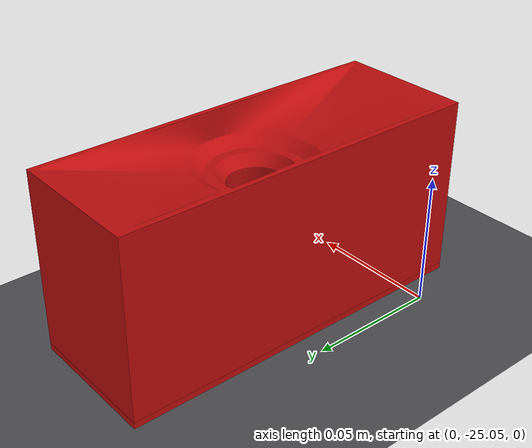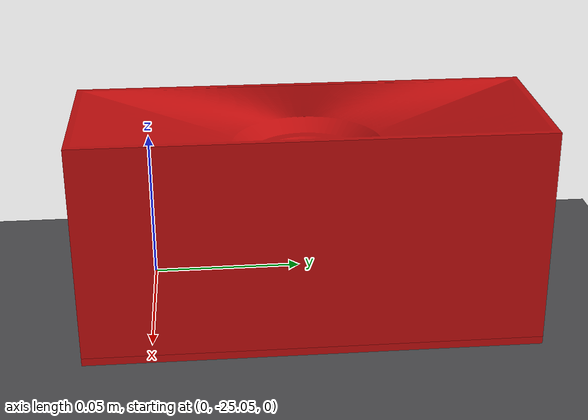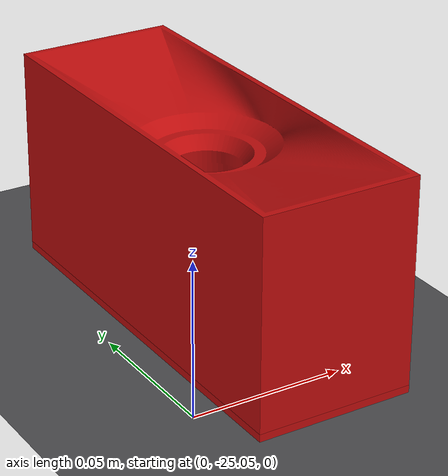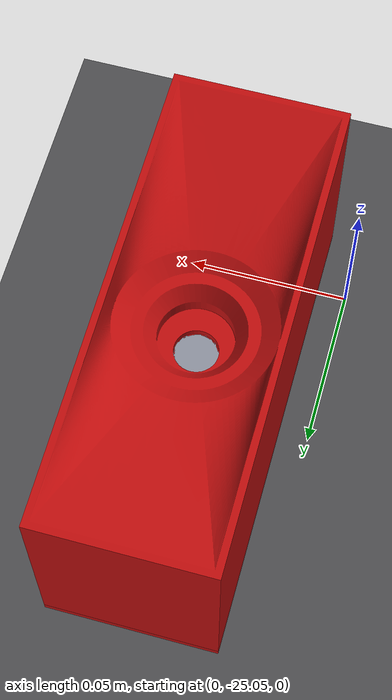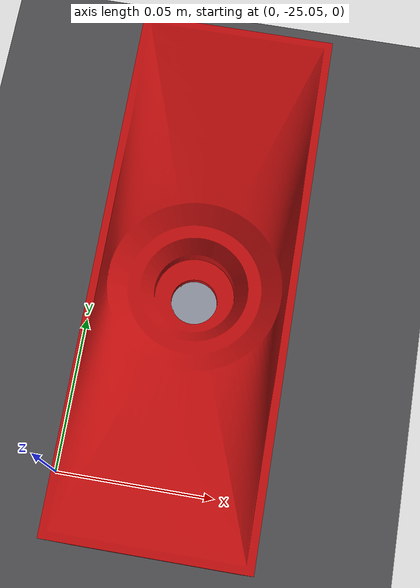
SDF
<sdf version="1.9">
 <world name="default">
  <model name="ground_plane">
   <static>true</static>
   <link name="link">
    <collision name="collision">
     <geometry><plane><normal>0 0 1</normal><size>1 1</size></plane></geometry>
    </collision>
    <visual name="visual">
     <cast_shadows>false</cast_shadows>
     <geometry><plane><normal>0 0 1</normal><size>500 500</size></plane></geometry>
     <material>
      <ambient>0.30 0.30 0.31 1</ambient>
      <diffuse>0.30 0.30 0.31 1</diffuse>
      <specular>0 0 0 0</specular>
      <pbr>
       <metal>
        <albedo_map>materials/textures/asphalt_grey.png</albedo_map>
        <metalness>0.0</metalness>
        <roughness>1.0</roughness>
       </metal>
      </pbr>
     </material>
    </visual>
    <inertial>
     <mass>1</mass>
     <inertia><ixx>1</ixx><ixy>0</ixy><ixz>0</ixz><iyy>1</iyy><iyz>0</iyz><izz>1</izz></inertia>
    </inertial>
   </link>
  </model>
  <model name="payload_red">
   <pose>0.035000 -25.000000 0.035 0 0 1.5707963268</pose>
   <link name="link">
    <inertial>
     <mass>0.15</mass>
     <inertia><ixx>9.25e-5</ixx><iyy>3.06e-4</iyy><izz>2.76e-4</izz><ixy>0</ixy><ixz>0</ixz><iyz>0</iyz></inertia>
    </inertial>
    <collision name="bore_base">
     <pose>0.000000 0.000000 -0.009000 0.000000000 0.000000000 0.000000000</pose>
     <geometry><box><size>0.140000 0.050000 0.052000</size></box></geometry>
    </collision>
    <collision name="bore_fill_wall_00">
     <pose>-0.047100 0.012500 0.029750 0.000000000 0.000000000 0.000000000</pose>
     <geometry><box><size>0.045800 0.025000 0.010500</size></box></geometry>
    </collision>
    <collision name="bore_fill_wall_01">
     <pose>-0.047100 -0.012500 0.029750 0.000000000 0.000000000 0.000000000</pose>
     <geometry><box><size>0.045800 0.025000 0.010500</size></box></geometry>
    </collision>
    <collision name="bore_fill_wall_02">
     <pose>-0.021175 0.020503 0.029750 0.000000000 0.000000000 0.000000000</pose>
     <geometry><box><size>0.006050 0.008993 0.010500</size></box></geometry>
    </collision>
    <collision name="bore_fill_wall_03">
     <pose>-0.021175 -0.020503 0.029750 0.000000000 0.000000000 0.000000000</pose>
     <geometry><box><size>0.006050 0.008993 0.010500</size></box></geometry>
    </collision>
    <collision name="bore_fill_wall_04">
     <pose>-0.015125 0.022979 0.029750 0.000000000 0.000000000 0.000000000</pose>
     <geometry><box><size>0.006050 0.004042 0.010500</size></box></geometry>
    </collision>
    <collision name="bore_fill_wall_05">
     <pose>-0.015125 -0.022979 0.029750 0.000000000 0.000000000 0.000000000</pose>
     <geometry><box><size>0.006050 0.004042 0.010500</size></box></geometry>
    </collision>
    <collision name="bore_fill_wall_06">
     <pose>-0.009075 0.024216 0.029750 0.000000000 0.000000000 0.000000000</pose>
     <geometry><box><size>0.006050 0.001568 0.010500</size></box></geometry>
    </collision>
    <collision name="bore_fill_wall_07">
     <pose>-0.009075 -0.024216 0.029750 0.000000000 0.000000000 0.000000000</pose>
     <geometry><box><size>0.006050 0.001568 0.010500</size></box></geometry>
    </collision>
    <collision name="bore_fill_wall_08">
     <pose>-0.003025 0.024600 0.029750 0.000000000 0.000000000 0.000000000</pose>
     <geometry><box><size>0.006050 0.000800 0.010500</size></box></geometry>
    </collision>
    <collision name="bore_fill_wall_09">
     <pose>-0.003025 -0.024600 0.029750 0.000000000 0.000000000 0.000000000</pose>
     <geometry><box><size>0.006050 0.000800 0.010500</size></box></geometry>
    </collision>
    <collision name="bore_fill_wall_10">
     <pose>0.003025 0.024600 0.029750 0.000000000 0.000000000 0.000000000</pose>
     <geometry><box><size>0.006050 0.000800 0.010500</size></box></geometry>
    </collision>
    <collision name="bore_fill_wall_11">
     <pose>0.003025 -0.024600 0.029750 0.000000000 0.000000000 0.000000000</pose>
     <geometry><box><size>0.006050 0.000800 0.010500</size></box></geometry>
    </collision>
    <collision name="bore_fill_wall_12">
     <pose>0.009075 0.024216 0.029750 0.000000000 0.000000000 0.000000000</pose>
     <geometry><box><size>0.006050 0.001568 0.010500</size></box></geometry>
    </collision>
    <collision name="bore_fill_wall_13">
     <pose>0.009075 -0.024216 0.029750 0.000000000 0.000000000 0.000000000</pose>
     <geometry><box><size>0.006050 0.001568 0.010500</size></box></geometry>
    </collision>
    <collision name="bore_fill_wall_14">
     <pose>0.015125 0.022979 0.029750 0.000000000 0.000000000 0.000000000</pose>
     <geometry><box><size>0.006050 0.004042 0.010500</size></box></geometry>
    </collision>
    <collision name="bore_fill_wall_15">
     <pose>0.015125 -0.022979 0.029750 0.000000000 0.000000000 0.000000000</pose>
     <geometry><box><size>0.006050 0.004042 0.010500</size></box></geometry>
    </collision>
    <collision name="bore_fill_wall_16">
     <pose>0.021175 0.020503 0.029750 0.000000000 0.000000000 0.000000000</pose>
     <geometry><box><size>0.006050 0.008993 0.010500</size></box></geometry>
    </collision>
    <collision name="bore_fill_wall_17">
     <pose>0.021175 -0.020503 0.029750 0.000000000 0.000000000 0.000000000</pose>
     <geometry><box><size>0.006050 0.008993 0.010500</size></box></geometry>
    </collision>
    <collision name="bore_fill_wall_18">
     <pose>0.047100 0.012500 0.029750 0.000000000 0.000000000 0.000000000</pose>
     <geometry><box><size>0.045800 0.025000 0.010500</size></box></geometry>
    </collision>
    <collision name="bore_fill_wall_19">
     <pose>0.047100 -0.012500 0.029750 0.000000000 0.000000000 0.000000000</pose>
     <geometry><box><size>0.045800 0.025000 0.010500</size></box></geometry>
    </collision>
    <collision name="bore_wall_00">
     <pose>0.026424 0.000000 0.029750 0.000000000 0.000000000 0.000000000</pose>
     <geometry><box><size>0.007153 0.014080 0.010500</size></box></geometry>
    </collision>
    <collision name="bore_wall_01">
     <pose>0.022883 0.013212 0.029750 0.000000000 0.000000000 0.523598776</pose>
     <geometry><box><size>0.007153 0.014080 0.010500</size></box></geometry>
    </collision>
    <collision name="bore_wall_02">
     <pose>0.011895 0.020602 0.029750 0.000000000 0.000000000 1.047197551</pose>
     <geometry><box><size>0.001884 0.014080 0.010500</size></box></geometry>
    </collision>
    <collision name="bore_wall_03">
     <pose>0.000000 0.023871 0.029750 0.000000000 0.000000000 1.570796327</pose>
     <geometry><box><size>0.002048 0.014080 0.010500</size></box></geometry>
    </collision>
    <collision name="bore_wall_04">
     <pose>-0.011895 0.020602 0.029750 0.000000000 0.000000000 2.094395102</pose>
     <geometry><box><size>0.001884 0.014080 0.010500</size></box></geometry>
    </collision>
    <collision name="bore_wall_05">
     <pose>-0.022883 0.013212 0.029750 0.000000000 0.000000000 2.617993878</pose>
     <geometry><box><size>0.007153 0.014080 0.010500</size></box></geometry>
    </collision>
    <collision name="bore_wall_06">
     <pose>-0.026424 0.000000 0.029750 0.000000000 0.000000000 3.141592654</pose>
     <geometry><box><size>0.007153 0.014080 0.010500</size></box></geometry>
    </collision>
    <collision name="bore_wall_07">
     <pose>-0.022883 -0.013212 0.029750 0.000000000 0.000000000 3.665191429</pose>
     <geometry><box><size>0.007153 0.014080 0.010500</size></box></geometry>
    </collision>
    <collision name="bore_wall_08">
     <pose>-0.011895 -0.020602 0.029750 0.000000000 0.000000000 4.188790205</pose>
     <geometry><box><size>0.001884 0.014080 0.010500</size></box></geometry>
    </collision>
    <collision name="bore_wall_09">
     <pose>-0.000000 -0.023871 0.029750 0.000000000 0.000000000 4.712388980</pose>
     <geometry><box><size>0.002048 0.014080 0.010500</size></box></geometry>
    </collision>
    <collision name="bore_wall_10">
     <pose>0.011895 -0.020602 0.029750 0.000000000 0.000000000 5.235987756</pose>
     <geometry><box><size>0.001884 0.014080 0.010500</size></box></geometry>
    </collision>
    <collision name="bore_wall_11">
     <pose>0.022883 -0.013212 0.029750 0.000000000 0.000000000 5.759586532</pose>
     <geometry><box><size>0.007153 0.014080 0.010500</size></box></geometry>
    </collision>
    <collision name="bore_fill_chamfer1_00">
     <pose>-0.046735 0.012500 0.022625 0.000000000 0.000000000 0.000000000</pose>
     <geometry><box><size>0.046530 0.025000 0.003750</size></box></geometry>
    </collision>
    <collision name="bore_fill_chamfer1_01">
     <pose>-0.046735 -0.012500 0.022625 0.000000000 0.000000000 0.000000000</pose>
     <geometry><box><size>0.046530 0.025000 0.003750</size></box></geometry>
    </collision>
    <collision name="bore_fill_chamfer1_02">
     <pose>-0.020536 0.020262 0.022625 0.000000000 0.000000000 0.000000000</pose>
     <geometry><box><size>0.005867 0.009476 0.003750</size></box></geometry>
    </collision>
    <collision name="bore_fill_chamfer1_03">
     <pose>-0.020536 -0.020262 0.022625 0.000000000 0.000000000 0.000000000</pose>
     <geometry><box><size>0.005867 0.009476 0.003750</size></box></geometry>
    </collision>
    <collision name="bore_fill_chamfer1_04">
     <pose>-0.014669 0.022663 0.022625 0.000000000 0.000000000 0.000000000</pose>
     <geometry><box><size>0.005867 0.004674 0.003750</size></box></geometry>
    </collision>
    <collision name="bore_fill_chamfer1_05">
     <pose>-0.014669 -0.022663 0.022625 0.000000000 0.000000000 0.000000000</pose>
     <geometry><box><size>0.005867 0.004674 0.003750</size></box></geometry>
    </collision>
    <collision name="bore_fill_chamfer1_06">
     <pose>-0.008801 0.023862 0.022625 0.000000000 0.000000000 0.000000000</pose>
     <geometry><box><size>0.005867 0.002275 0.003750</size></box></geometry>
    </collision>
    <collision name="bore_fill_chamfer1_07">
     <pose>-0.008801 -0.023862 0.022625 0.000000000 0.000000000 0.000000000</pose>
     <geometry><box><size>0.005867 0.002275 0.003750</size></box></geometry>
    </collision>
    <collision name="bore_fill_chamfer1_08">
     <pose>-0.002934 0.024235 0.022625 0.000000000 0.000000000 0.000000000</pose>
     <geometry><box><size>0.005867 0.001530 0.003750</size></box></geometry>
    </collision>
    <collision name="bore_fill_chamfer1_09">
     <pose>-0.002934 -0.024235 0.022625 0.000000000 0.000000000 0.000000000</pose>
     <geometry><box><size>0.005867 0.001530 0.003750</size></box></geometry>
    </collision>
    <collision name="bore_fill_chamfer1_10">
     <pose>0.002934 0.024235 0.022625 0.000000000 0.000000000 0.000000000</pose>
     <geometry><box><size>0.005867 0.001530 0.003750</size></box></geometry>
    </collision>
    <collision name="bore_fill_chamfer1_11">
     <pose>0.002934 -0.024235 0.022625 0.000000000 0.000000000 0.000000000</pose>
     <geometry><box><size>0.005867 0.001530 0.003750</size></box></geometry>
    </collision>
    <collision name="bore_fill_chamfer1_12">
     <pose>0.008801 0.023862 0.022625 0.000000000 0.000000000 0.000000000</pose>
     <geometry><box><size>0.005867 0.002275 0.003750</size></box></geometry>
    </collision>
    <collision name="bore_fill_chamfer1_13">
     <pose>0.008801 -0.023862 0.022625 0.000000000 0.000000000 0.000000000</pose>
     <geometry><box><size>0.005867 0.002275 0.003750</size></box></geometry>
    </collision>
    <collision name="bore_fill_chamfer1_14">
     <pose>0.014669 0.022663 0.022625 0.000000000 0.000000000 0.000000000</pose>
     <geometry><box><size>0.005867 0.004674 0.003750</size></box></geometry>
    </collision>
    <collision name="bore_fill_chamfer1_15">
     <pose>0.014669 -0.022663 0.022625 0.000000000 0.000000000 0.000000000</pose>
     <geometry><box><size>0.005867 0.004674 0.003750</size></box></geometry>
    </collision>
    <collision name="bore_fill_chamfer1_16">
     <pose>0.020536 0.020262 0.022625 0.000000000 0.000000000 0.000000000</pose>
     <geometry><box><size>0.005867 0.009476 0.003750</size></box></geometry>
    </collision>
    <collision name="bore_fill_chamfer1_17">
     <pose>0.020536 -0.020262 0.022625 0.000000000 0.000000000 0.000000000</pose>
     <geometry><box><size>0.005867 0.009476 0.003750</size></box></geometry>
    </collision>
    <collision name="bore_fill_chamfer1_18">
     <pose>0.046735 0.012500 0.022625 0.000000000 0.000000000 0.000000000</pose>
     <geometry><box><size>0.046530 0.025000 0.003750</size></box></geometry>
    </collision>
    <collision name="bore_fill_chamfer1_19">
     <pose>0.046735 -0.012500 0.022625 0.000000000 0.000000000 0.000000000</pose>
     <geometry><box><size>0.046530 0.025000 0.003750</size></box></geometry>
    </collision>
    <collision name="bore_chamfer1_00">
     <pose>0.019945 0.000000 0.020896 0.000000000 -0.411260474 0.000000000</pose>
     <geometry><box><size>0.010560 0.014080 0.004286</size></box></geometry>
    </collision>
    <collision name="bore_chamfer1_01">
     <pose>0.017273 0.009973 0.020896 0.000000000 -0.411260474 0.523598776</pose>
     <geometry><box><size>0.010560 0.014080 0.004286</size></box></geometry>
    </collision>
    <collision name="bore_chamfer1_02">
     <pose>0.009734 0.016861 0.021486 0.000000000 -0.411260474 1.047197551</pose>
     <geometry><box><size>0.010158 0.014080 0.002825</size></box></geometry>
    </collision>
    <collision name="bore_chamfer1_03">
     <pose>0.000000 0.019549 0.021387 0.000000000 -0.411260474 1.570796327</pose>
     <geometry><box><size>0.010226 0.014080 0.003071</size></box></geometry>
    </collision>
    <collision name="bore_chamfer1_04">
     <pose>-0.009734 0.016861 0.021486 0.000000000 -0.411260474 2.094395102</pose>
     <geometry><box><size>0.010158 0.014080 0.002825</size></box></geometry>
    </collision>
    <collision name="bore_chamfer1_05">
     <pose>-0.017273 0.009973 0.020896 0.000000000 -0.411260474 2.617993878</pose>
     <geometry><box><size>0.010560 0.014080 0.004286</size></box></geometry>
    </collision>
    <collision name="bore_chamfer1_06">
     <pose>-0.019945 0.000000 0.020896 0.000000000 -0.411260474 3.141592654</pose>
     <geometry><box><size>0.010560 0.014080 0.004286</size></box></geometry>
    </collision>
    <collision name="bore_chamfer1_07">
     <pose>-0.017273 -0.009973 0.020896 0.000000000 -0.411260474 3.665191429</pose>
     <geometry><box><size>0.010560 0.014080 0.004286</size></box></geometry>
    </collision>
    <collision name="bore_chamfer1_08">
     <pose>-0.009734 -0.016861 0.021486 0.000000000 -0.411260474 4.188790205</pose>
     <geometry><box><size>0.010158 0.014080 0.002825</size></box></geometry>
    </collision>
    <collision name="bore_chamfer1_09">
     <pose>-0.000000 -0.019549 0.021387 0.000000000 -0.411260474 4.712388980</pose>
     <geometry><box><size>0.010226 0.014080 0.003071</size></box></geometry>
    </collision>
    <collision name="bore_chamfer1_10">
     <pose>0.009734 -0.016861 0.021486 0.000000000 -0.411260474 5.235987756</pose>
     <geometry><box><size>0.010158 0.014080 0.002825</size></box></geometry>
    </collision>
    <collision name="bore_chamfer1_11">
     <pose>0.017273 -0.009973 0.020896 0.000000000 -0.411260474 5.759586532</pose>
     <geometry><box><size>0.010560 0.014080 0.004286</size></box></geometry>
    </collision>
    <collision name="bore_fill_chamfer2_00">
     <pose>-0.042360 0.012500 0.018875 0.000000000 0.000000000 0.000000000</pose>
     <geometry><box><size>0.055280 0.025000 0.003750</size></box></geometry>
    </collision>
    <collision name="bore_fill_chamfer2_01">
     <pose>-0.042360 -0.012500 0.018875 0.000000000 0.000000000 0.000000000</pose>
     <geometry><box><size>0.055280 0.025000 0.003750</size></box></geometry>
    </collision>
    <collision name="bore_fill_chamfer2_02">
     <pose>0.000000 0.019860 0.018875 0.000000000 0.000000000 0.000000000</pose>
     <geometry><box><size>0.029440 0.010280 0.003750</size></box></geometry>
    </collision>
    <collision name="bore_fill_chamfer2_03">
     <pose>0.000000 -0.019860 0.018875 0.000000000 0.000000000 0.000000000</pose>
     <geometry><box><size>0.029440 0.010280 0.003750</size></box></geometry>
    </collision>
    <collision name="bore_fill_chamfer2_04">
     <pose>0.042360 0.012500 0.018875 0.000000000 0.000000000 0.000000000</pose>
     <geometry><box><size>0.055280 0.025000 0.003750</size></box></geometry>
    </collision>
    <collision name="bore_fill_chamfer2_05">
     <pose>0.042360 -0.012500 0.018875 0.000000000 0.000000000 0.000000000</pose>
     <geometry><box><size>0.055280 0.025000 0.003750</size></box></geometry>
    </collision>
    <collision name="bore_chamfer2_00">
     <pose>0.013812 0.000000 0.017698 0.000000000 -0.828582980 0.000000000</pose>
     <geometry><box><size>0.005088 0.008781 0.003482</size></box></geometry>
    </collision>
    <collision name="bore_chamfer2_01">
     <pose>0.011962 0.006906 0.017698 0.000000000 -0.828582980 0.523598776</pose>
     <geometry><box><size>0.005088 0.008781 0.003482</size></box></geometry>
    </collision>
    <collision name="bore_chamfer2_02">
     <pose>0.006906 0.011962 0.017698 0.000000000 -0.828582980 1.047197551</pose>
     <geometry><box><size>0.005088 0.008781 0.003482</size></box></geometry>
    </collision>
    <collision name="bore_chamfer2_03">
     <pose>0.000000 0.013812 0.017698 0.000000000 -0.828582980 1.570796327</pose>
     <geometry><box><size>0.005088 0.008781 0.003482</size></box></geometry>
    </collision>
    <collision name="bore_chamfer2_04">
     <pose>-0.006906 0.011962 0.017698 0.000000000 -0.828582980 2.094395102</pose>
     <geometry><box><size>0.005088 0.008781 0.003482</size></box></geometry>
    </collision>
    <collision name="bore_chamfer2_05">
     <pose>-0.011962 0.006906 0.017698 0.000000000 -0.828582980 2.617993878</pose>
     <geometry><box><size>0.005088 0.008781 0.003482</size></box></geometry>
    </collision>
    <collision name="bore_chamfer2_06">
     <pose>-0.013812 0.000000 0.017698 0.000000000 -0.828582980 3.141592654</pose>
     <geometry><box><size>0.005088 0.008781 0.003482</size></box></geometry>
    </collision>
    <collision name="bore_chamfer2_07">
     <pose>-0.011962 -0.006906 0.017698 0.000000000 -0.828582980 3.665191429</pose>
     <geometry><box><size>0.005088 0.008781 0.003482</size></box></geometry>
    </collision>
    <collision name="bore_chamfer2_08">
     <pose>-0.006906 -0.011962 0.017698 0.000000000 -0.828582980 4.188790205</pose>
     <geometry><box><size>0.005088 0.008781 0.003482</size></box></geometry>
    </collision>
    <collision name="bore_chamfer2_09">
     <pose>-0.000000 -0.013812 0.017698 0.000000000 -0.828582980 4.712388980</pose>
     <geometry><box><size>0.005088 0.008781 0.003482</size></box></geometry>
    </collision>
    <collision name="bore_chamfer2_10">
     <pose>0.006906 -0.011962 0.017698 0.000000000 -0.828582980 5.235987756</pose>
     <geometry><box><size>0.005088 0.008781 0.003482</size></box></geometry>
    </collision>
    <collision name="bore_chamfer2_11">
     <pose>0.011962 -0.006906 0.017698 0.000000000 -0.828582980 5.759586532</pose>
     <geometry><box><size>0.005088 0.008781 0.003482</size></box></geometry>
    </collision>
    <visual name="visual">
     <pose>0 0 0.008 0 0 0</pose>
     <geometry><mesh><uri>model://kursad_payload/meshes/payload_body.stl</uri></mesh></geometry>
     <material>
      <ambient>0.75 0.05 0.05 1</ambient>
      <diffuse>0.75 0.05 0.05 1</diffuse>
      <specular>0.2 0.2 0.2 1</specular>
     </material>
    </visual>
    <visual name="bottom_plate_visual">
     <pose>0 0 0.008 0 0 0</pose>
     <geometry><mesh><uri>model://kursad_payload/meshes/payload_bottom_plate.stl</uri></mesh></geometry>
     <material>
      <ambient>0.75 0.05 0.05 1</ambient>
      <diffuse>0.75 0.05 0.05 1</diffuse>
      <specular>0.2 0.2 0.2 1</specular>
     </material>
    </visual>
    <visual name="target_disk_visual">
     <pose>0 0 0.0053 0 0 0</pose>
     <geometry><cylinder><radius>0.0175</radius><length>0.001</length></cylinder></geometry>
     <material>
      <ambient>0.32 0.33 0.36 1</ambient>
      <diffuse>0.55 0.57 0.62 1</diffuse>
      <specular>0.9 0.9 0.9 1</specular>
     </material>
    </visual>
   </link>
  </model>
 </world>
</sdf>
